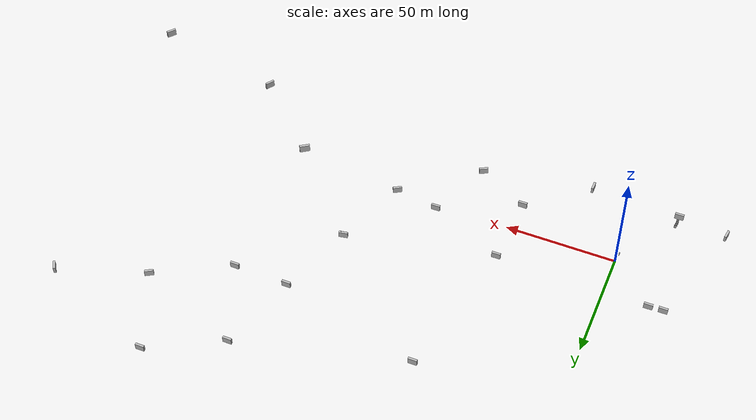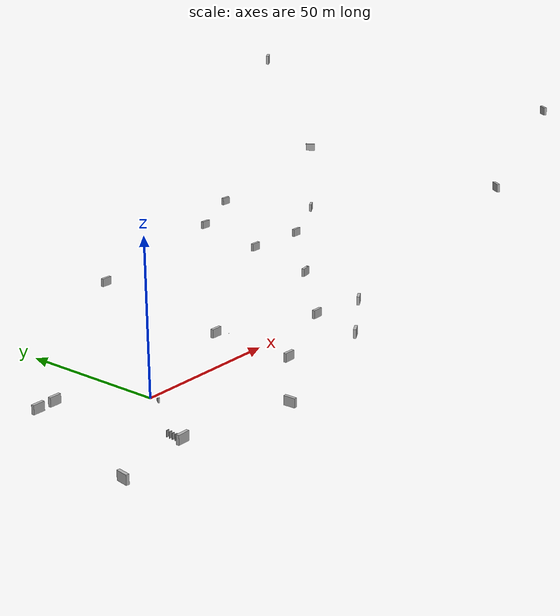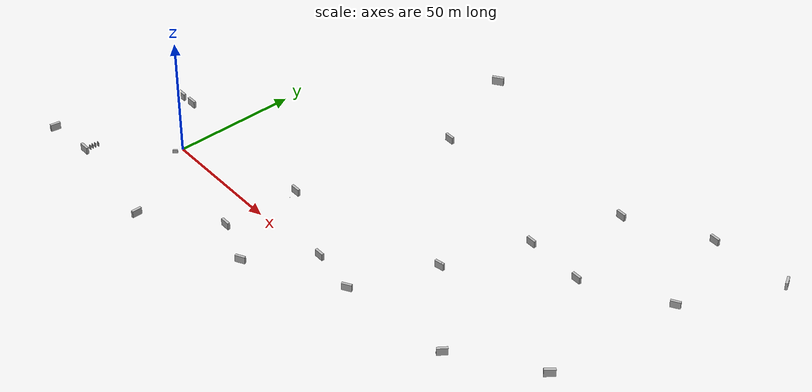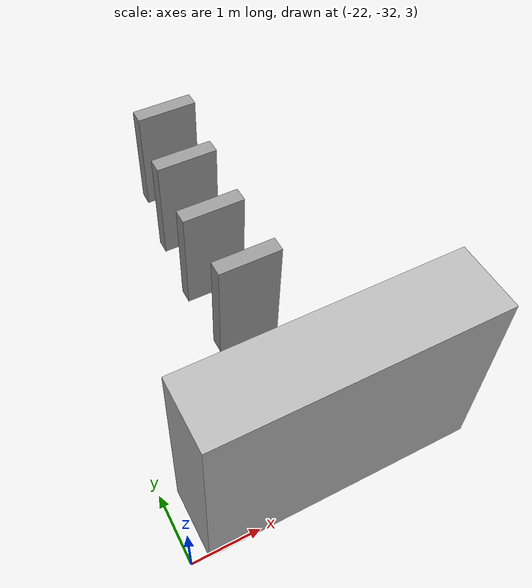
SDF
<sdf version="1.6">
 <world name="default">
  <scene>
   <grid>0</grid>
   <origin_visual>0</origin_visual>
   <ambient>0.4 0.4 0.4 1</ambient>
   <background>0.7 0.7 0.7 1</background>
   <shadows>1</shadows>
  </scene>
  <light name="sun" type="directional">
   <pose>0 0 -10 -0.7 -0 0</pose>
   <diffuse>0.8 0.8 0.8 1</diffuse>
   <specular>0.2 0.2 0.2 1</specular>
   <attenuation>
    <range>1000</range>
    <constant>0.9</constant>
    <linear>0.01</linear>
    <quadratic>0.001</quadratic>
   </attenuation>
   <direction>-0.5 0.1 -0.9</direction>
  </light>
  <gravity>0 0 -9.8</gravity>
  <magnetic_field>6e-06 2.3e-05 -4.2e-05</magnetic_field>
  <atmosphere type="adiabatic"/>
  <physics name="default_physics" default="0" type="ode">
   <max_step_size>0.001</max_step_size>
   <real_time_factor>1</real_time_factor>
   <real_time_update_rate>1000</real_time_update_rate>
  </physics>
  <spherical_coordinates>
   <surface_model>EARTH_WGS84</surface_model>
   <latitude_deg>0</latitude_deg>
   <longitude_deg>0</longitude_deg>
   <elevation>0</elevation>
   <heading_deg>0</heading_deg>
  </spherical_coordinates>
  <model name="slide-0">
   <pose>213.516 106.345 17.4417 0 -0 2.13765</pose>
   <static>1</static>
   <link name="link">
    <pose>0 0 1.5 0 -0 0</pose>
    <collision name="collision"><geometry><box><size>4 1 3</size></box></geometry></collision>
    <visual name="visual">
     <geometry><box><size>4 1 3</size></box></geometry>
     <material>
      <script>
       <uri>model://slide-0/materials/scripts</uri>
       <uri>model://slide-0/materials/textures</uri>
       <name>Slides/slide_0</name>
      </script>
     </material>
    </visual>
   </link>
  </model>
  <model name="slide-1">
   <pose>184.056 83.2378 0 0 0 -2.60997</pose>
   <static>1</static>
   <link name="link">
    <pose>0 0 1.5 0 -0 0</pose>
    <collision name="collision"><geometry><box><size>4 1 3</size></box></geometry></collision>
    <visual name="visual">
     <geometry><box><size>4 1 3</size></box></geometry>
     <material>
      <script>
       <uri>model://slide-1/materials/scripts</uri>
       <uri>model://slide-1/materials/textures</uri>
       <name>Slides/slide_1</name>
      </script>
     </material>
    </visual>
   </link>
   <pose>10 0 0 0 -0 0</pose>
  </model>
  <model name="slide-2">
   <pose>151.592 65.596 0 0 -0 0</pose>
   <static>1</static>
   <link name="link">
    <pose>0 0 1.5 0 -0 0</pose>
    <collision name="collision"><geometry><box><size>4 1 3</size></box></geometry></collision>
    <visual name="visual">
     <geometry><box><size>4 1 3</size></box></geometry>
     <material>
      <script>
       <uri>model://slide-2/materials/scripts</uri>
       <uri>model://slide-2/materials/textures</uri>
       <name>Slides/slide_2</name>
      </script>
     </material>
    </visual>
   </link>
   <pose>20 0 0 0 -0 0</pose>
  </model>
  <model name="slide-3">
   <pose>215.991 -9.32021 49.0697 0 0 -2.2423</pose>
   <static>1</static>
   <link name="link">
    <pose>0 0 1.5 0 -0 0</pose>
    <collision name="collision"><geometry><box><size>4 1 3</size></box></geometry></collision>
    <visual name="visual">
     <geometry><box><size>4 1 3</size></box></geometry>
     <material>
      <script>
       <uri>model://slide-3/materials/scripts</uri>
       <uri>model://slide-3/materials/textures</uri>
       <name>Slides/slide_3</name>
      </script>
     </material>
    </visual>
   </link>
   <pose>30 0 0 0 -0 0</pose>
  </model>
  <model name="slide-4">
   <pose>171.242 -14.9014 28.1493 0 -0 0.96198</pose>
   <static>1</static>
   <link name="link">
    <pose>0 0 1.5 0 -0 0</pose>
    <collision name="collision"><geometry><box><size>4 1 3</size></box></geometry></collision>
    <visual name="visual">
     <geometry><box><size>4 1 3</size></box></geometry>
     <material>
      <script>
       <uri>model://slide-4/materials/scripts</uri>
       <uri>model://slide-4/materials/textures</uri>
       <name>Slides/slide_4</name>
      </script>
     </material>
    </visual>
   </link>
   <pose>40 0 0 0 -0 0</pose>
  </model>
  <model name="slide-5">
   <pose>102.789 -0.962097 0 0 0 -2.60227</pose>
   <static>1</static>
   <link name="link">
    <pose>0 0 1.5 0 -0 0</pose>
    <collision name="collision"><geometry><box><size>4 1 3</size></box></geometry></collision>
    <visual name="visual">
     <geometry><box><size>4 1 3</size></box></geometry>
     <material>
      <script>
       <uri>model://slide-5/materials/scripts</uri>
       <uri>model://slide-5/materials/textures</uri>
       <name>Slides/slide_5</name>
      </script>
     </material>
    </visual>
   </link>
   <pose>0 10 0 0 -0 0</pose>
  </model>
  <model name="slide-6">
   <pose>82.9207 2.16237 0 0 -0 0</pose>
   <static>1</static>
   <link name="link">
    <pose>0 0 1.5 0 -0 0</pose>
    <collision name="collision"><geometry><box><size>4 1 3</size></box></geometry></collision>
    <visual name="visual">
     <geometry><box><size>4 1 3</size></box></geometry>
     <material>
      <script>
       <uri>model://slide-6/materials/scripts</uri>
       <uri>model://slide-6/materials/textures</uri>
       <name>Slides/slide_6</name>
      </script>
     </material>
    </visual>
   </link>
   <pose>10 10 0 0 -0 0</pose>
  </model>
  <model name="slide-7">
   <pose>69.6611 -23.5778 3.45748 0 0 -2.64713</pose>
   <static>1</static>
   <link name="link">
    <pose>0 0 1.5 0 -0 0</pose>
    <collision name="collision"><geometry><box><size>4 1 3</size></box></geometry></collision>
    <visual name="visual">
     <geometry><box><size>4 1 3</size></box></geometry>
     <material>
      <script>
       <uri>model://slide-7/materials/scripts</uri>
       <uri>model://slide-7/materials/textures</uri>
       <name>Slides/slide_7</name>
      </script>
     </material>
    </visual>
   </link>
   <pose>20 10 0 0 -0 0</pose>
  </model>
  <model name="slide-8">
   <pose>47.3494 -14.0536 0.00585 0 -0 0</pose>
   <static>1</static>
   <link name="link">
    <pose>0 0 1.5 0 -0 0</pose>
    <collision name="collision"><geometry><box><size>4 1 3</size></box></geometry></collision>
    <visual name="visual">
     <geometry><box><size>4 1 3</size></box></geometry>
     <material>
      <script>
       <uri>model://slide-8/materials/scripts</uri>
       <uri>model://slide-8/materials/textures</uri>
       <name>Slides/slide_8</name>
      </script>
     </material>
    </visual>
   </link>
   <pose>30 10 0 0 -0 0</pose>
  </model>
  <model name="slide-9">
   <pose>20.98 -35.68 0 0 0 1.57</pose>
   <static>1</static>
   <link name="link">
    <pose>0 0 1.5 0 -0 0</pose>
    <collision name="collision"><geometry><box><size>4 1 3</size></box></geometry></collision>
    <visual name="visual">
     <geometry><box><size>4 1 3</size></box></geometry>
     <material>
      <script>
       <uri>model://slide-9/materials/scripts</uri>
       <uri>model://slide-9/materials/textures</uri>
       <name>Slides/slide_9</name>
      </script>
     </material>
    </visual>
   </link>
   <pose>40 10 0 0 -0 0</pose>
  </model>
  <model name="slide-10">
   <pose>-19.7419 -31.4928 2.88518 0 -0 0.001077</pose>
   <static>0</static>
   <link name="link">
    <pose>0 0 1.5 0 -0 0</pose>
    <collision name="collision"><geometry><box><size>4 1 3</size></box></geometry></collision>
    <visual name="visual">
     <geometry><box><size>4 1 3</size></box></geometry>
     <material>
      <script>
       <uri>model://slide-10/materials/scripts</uri>
       <uri>model://slide-10/materials/textures</uri>
       <name>Slides/slide_10</name>
      </script>
     </material>
    </visual>
    <inertial>
     <inertia><ixx>1</ixx><ixy>0</ixy><ixz>0</ixz><iyy>1</iyy><iyz>0</iyz><izz>1</izz></inertia>
     <mass>1</mass>
    </inertial>
   </link>
   <pose>0 20 0 0 -0 0</pose>
  </model>
  <model name="slide-11">
   <pose>-41.6676 -31.0104 0 0 -0 1.42292</pose>
   <static>1</static>
   <link name="link">
    <pose>0 0 1.5 0 -0 0</pose>
    <collision name="collision"><geometry><box><size>4 1 3</size></box></geometry></collision>
    <visual name="visual">
     <geometry><box><size>4 1 3</size></box></geometry>
     <material>
      <script>
       <uri>model://slide-11/materials/scripts</uri>
       <uri>model://slide-11/materials/textures</uri>
       <name>Slides/slide_11</name>
      </script>
     </material>
    </visual>
   </link>
   <pose>10 20 0 0 -0 0</pose>
  </model>
  <model name="slide-12">
   <pose>-0.164518 -3.39832 0 0 0 -2.19897</pose>
   <static>1</static>
   <link name="link">
    <pose>0 0 0.75 0 -0 0</pose>
    <collision name="collision"><geometry><box><size>2 0.5 1.5</size></box></geometry></collision>
    <visual name="visual">
     <geometry><box><size>2 0.5 1.5</size></box></geometry>
     <material>
      <script>
       <uri>model://slide-12/materials/scripts</uri>
       <uri>model://slide-12/materials/textures</uri>
       <name>Slides/slide_12</name>
      </script>
     </material>
    </visual>
   </link>
   <pose>20 20 0 0 -0 0</pose>
  </model>
  <model name="slide-13">
   <pose>-26.5565 18.5444 -9e-06 0 -4e-06 9e-05</pose>
   <static>0</static>
   <link name="link">
    <pose>0 0 1.5 0 -0 0</pose>
    <collision name="collision"><geometry><box><size>4 1 3</size></box></geometry></collision>
    <visual name="visual">
     <geometry><box><size>4 1 3</size></box></geometry>
     <material>
      <script>
       <uri>model://slide-13/materials/scripts</uri>
       <uri>model://slide-13/materials/textures</uri>
       <name>Slides/slide_13</name>
      </script>
     </material>
    </visual>
    <inertial>
     <inertia><ixx>1</ixx><ixy>0</ixy><ixz>0</ixz><iyy>1</iyy><iyz>0</iyz><izz>1</izz></inertia>
     <mass>1</mass>
    </inertial>
   </link>
   <pose>30 20 0 0 -0 0</pose>
  </model>
  <model name="slide-14">
   <pose>-20.1177 18.7612 0 0 -0 0</pose>
   <static>1</static>
   <link name="link">
    <pose>0 0 1.5 0 -0 0</pose>
    <collision name="collision"><geometry><box><size>4 1 3</size></box></geometry></collision>
    <visual name="visual">
     <geometry><box><size>4 1 3</size></box></geometry>
     <material>
      <script>
       <uri>model://slide-14/materials/scripts</uri>
       <uri>model://slide-14/materials/textures</uri>
       <name>Slides/slide_14</name>
      </script>
     </material>
    </visual>
   </link>
   <pose>40 20 0 0 -0 0</pose>
  </model>
  <model name="slide-15">
   <pose>48.7002 17.5657 0 0 -0 0</pose>
   <static>1</static>
   <link name="link">
    <pose>0 0 1.5 0 -0 0</pose>
    <collision name="collision"><geometry><box><size>4 1 3</size></box></geometry></collision>
    <visual name="visual">
     <geometry><box><size>4 1 3</size></box></geometry>
     <material>
      <script>
       <uri>model://slide-15/materials/scripts</uri>
       <uri>model://slide-15/materials/textures</uri>
       <name>Slides/slide_15</name>
      </script>
     </material>
    </visual>
   </link>
   <pose>0 30 0 0 -0 0</pose>
  </model>
  <model name="slide-16">
   <pose>61.836 82.467 0 0 -0 0</pose>
   <static>1</static>
   <link name="link">
    <pose>0 0 1.5 0 -0 0</pose>
    <collision name="collision"><geometry><box><size>4 1 3</size></box></geometry></collision>
    <visual name="visual">
     <geometry><box><size>4 1 3</size></box></geometry>
     <material>
      <script>
       <uri>model://slide-16/materials/scripts</uri>
       <uri>model://slide-16/materials/textures</uri>
       <name>Slides/slide_16</name>
      </script>
     </material>
    </visual>
   </link>
   <pose>10 30 0 0 -0 0</pose>
  </model>
  <model name="slide-17">
   <pose>114.989 32.1942 0 0 -0 0.185374</pose>
   <static>1</static>
   <link name="link">
    <pose>0 0 1.5 0 -0 0</pose>
    <collision name="collision"><geometry><box><size>4 1 3</size></box></geometry></collision>
    <visual name="visual">
     <geometry><box><size>4 1 3</size></box></geometry>
     <material>
      <script>
       <uri>model://slide-17/materials/scripts</uri>
       <uri>model://slide-17/materials/textures</uri>
       <name>Slides/slide_17</name>
      </script>
     </material>
    </visual>
    <visual name="LED">
     <pose>1 -0.25 1.6 0 0 0</pose>
     <geometry><cylinder><length>0.32</length><radius>0.14</radius></cylinder></geometry>
     <plugin name="blink" filename="libBlinkVisualPlugin.so">
      <color_a>0 0 0 1</color_a>
      <color_b>0.8 0.4 0.1 1</color_b>
      <period>1</period>
      <use_wall_time>true</use_wall_time>
     </plugin>
    </visual>
   </link>
   <pose>20 30 0 0 -0 0</pose>
  </model>
  <model name="slide-18">
   <pose>119.786 53.2551 76.2597 0 -0 0.5979</pose>
   <static>1</static>
   <link name="link">
    <pose>0 0 1.5 0 -0 0</pose>
    <collision name="collision"><geometry><box><size>4 1 3</size></box></geometry></collision>
    <visual name="visual">
     <geometry><box><size>4 1 3</size></box></geometry>
     <material>
      <script>
       <uri>model://slide-18/materials/scripts</uri>
       <uri>model://slide-18/materials/textures</uri>
       <name>Slides/slide_18</name>
      </script>
     </material>
    </visual>
   </link>
   <pose>30 30 0 0 -0 0</pose>
  </model>
  <model name="slide-19">
   <pose>126.732 66.2608 0 0 -0 0</pose>
   <static>1</static>
   <link name="link">
    <pose>0 0 1.5 0 -0 0</pose>
    <collision name="collision"><geometry><box><size>4 1 3</size></box></geometry></collision>
    <visual name="visual">
     <geometry><box><size>4 1 3</size></box></geometry>
     <material>
      <script>
       <uri>model://slide-19/materials/scripts</uri>
       <uri>model://slide-19/materials/textures</uri>
       <name>Slides/slide_19</name>
      </script>
     </material>
    </visual>
   </link>
   <pose>40 30 0 0 -0 0</pose>
  </model>
  <model name="slide-20">
   <pose>136.972 101.929 0 0 -0 0</pose>
   <static>1</static>
   <link name="link">
    <pose>0 0 1.5 0 -0 0</pose>
    <collision name="collision"><geometry><box><size>4 1 3</size></box></geometry></collision>
    <visual name="visual">
     <geometry><box><size>4 1 3</size></box></geometry>
     <material>
      <script>
       <uri>model://slide-20/materials/scripts</uri>
       <uri>model://slide-20/materials/textures</uri>
       <name>Slides/slide_20</name>
      </script>
     </material>
    </visual>
   </link>
   <pose>0 40 0 0 -0 0</pose>
  </model>
  <model name="slide-21">
   <pose>168.817 118.755 0 0 -0 0</pose>
   <static>1</static>
   <link name="link">
    <pose>0 0 1.5 0 -0 0</pose>
    <collision name="collision"><geometry><box><size>4 1 3</size></box></geometry></collision>
    <visual name="visual">
     <geometry><box><size>4 1 3</size></box></geometry>
     <material>
      <script>
       <uri>model://slide-21/materials/scripts</uri>
       <uri>model://slide-21/materials/textures</uri>
       <name>Slides/slide_21</name>
      </script>
     </material>
    </visual>
   </link>
   <pose>10 40 0 0 -0 0</pose>
  </model>
  <model name="camera">
   <pose>50.4261 13.4416 1.40943 -5.3e-05 -2.8e-05 1.96312</pose>
   <static>1</static>
   <pose>49.0069 14.5993 0.05 0 -0 0</pose>
   <link name="link">
    <inertial>
     <mass>0.1</mass>
     <inertia>
      <ixx>0.000166667</ixx>
      <iyy>0.000166667</iyy>
      <izz>0.000166667</izz>
      <ixy>0</ixy>
      <ixz>0</ixz>
      <iyz>0</iyz>
     </inertia>
    </inertial>
    <collision name="collision"><geometry><box><size>0.1 0.1 0.1</size></box></geometry></collision>
    <visual name="visual"><geometry><box><size>0.1 0.1 0.1</size></box></geometry></visual>
    <sensor name="camera" type="camera">
     <camera name="__default__">
      <horizontal_fov>1.047</horizontal_fov>
      <image><width>320</width><height>240</height></image>
      <clip><near>0.1</near><far>100</far></clip>
     </camera>
     <always_on>1</always_on>
     <update_rate>30</update_rate>
     <visualize>1</visualize>
    </sensor>
   </link>
  </model>
  <model name="dominoes_0">
   <pose>-19.4777 -25.7217 3.83952 1.5708 -0 8e-05</pose>
   <link name="link">
    <inertial>
     <mass>1</mass>
     <inertia>
      <ixx>0.166667</ixx>
      <ixy>0</ixy>
      <ixz>0</ixz>
      <iyy>0.166667</iyy>
      <iyz>0</iyz>
      <izz>0.166667</izz>
     </inertia>
    </inertial>
    <collision name="collision"><geometry><box><size>1 1.90868 0.241578</size></box></geometry></collision>
    <visual name="visual">
     <geometry><box><size>1 1.90868 0.241578</size></box></geometry>
     <material>
      <script><name>Gazebo/Grey</name><uri>file://media/materials/scripts/gazebo.material</uri></script>
     </material>
    </visual>
   </link>
  </model>
  <model name="dominoes_1">
   <pose>-19.6631 -26.9061 3.83952 1.5708 -0 -4e-06</pose>
   <link name="link">
    <inertial>
     <mass>1</mass>
     <inertia>
      <ixx>0.166667</ixx>
      <ixy>0</ixy>
      <ixz>0</ixz>
      <iyy>0.166667</iyy>
      <iyz>0</iyz>
      <izz>0.166667</izz>
     </inertia>
    </inertial>
    <collision name="collision"><geometry><box><size>1 1.90868 0.241578</size></box></geometry></collision>
    <visual name="visual">
     <geometry><box><size>1 1.90868 0.241578</size></box></geometry>
     <material>
      <script><name>Gazebo/Grey</name><uri>file://media/materials/scripts/gazebo.material</uri></script>
     </material>
    </visual>
   </link>
  </model>
  <model name="dominoes_2">
   <pose>-19.7585 -28.041 3.83952 1.5708 -2e-06 9e-06</pose>
   <link name="link">
    <inertial>
     <mass>1</mass>
     <inertia>
      <ixx>0.166667</ixx>
      <ixy>0</ixy>
      <ixz>0</ixz>
      <iyy>0.166667</iyy>
      <iyz>0</iyz>
      <izz>0.166667</izz>
     </inertia>
    </inertial>
    <collision name="collision"><geometry><box><size>1 1.90868 0.241578</size></box></geometry></collision>
    <visual name="visual">
     <geometry><box><size>1 1.90868 0.241578</size></box></geometry>
     <material>
      <script><name>Gazebo/Grey</name><uri>file://media/materials/scripts/gazebo.material</uri></script>
     </material>
    </visual>
   </link>
  </model>
  <model name="dominoes_3">
   <pose>-19.7274 -29.1334 3.83952 1.5708 -2e-06 9e-06</pose>
   <link name="link">
    <inertial>
     <mass>1</mass>
     <inertia>
      <ixx>0.166667</ixx>
      <ixy>0</ixy>
      <ixz>0</ixz>
      <iyy>0.166667</iyy>
      <iyz>0</iyz>
      <izz>0.166667</izz>
     </inertia>
    </inertial>
    <collision name="collision"><geometry><box><size>1 1.90868 0.241578</size></box></geometry></collision>
    <visual name="visual">
     <geometry><box><size>1 1.90868 0.241578</size></box></geometry>
     <material>
      <script><name>Gazebo/Grey</name><uri>file://media/materials/scripts/gazebo.material</uri></script>
     </material>
    </visual>
   </link>
  </model>
 </world>
</sdf>
